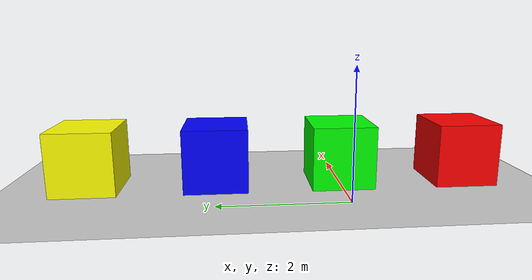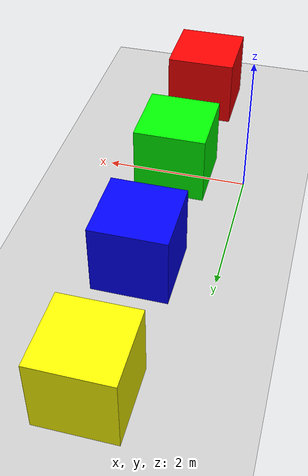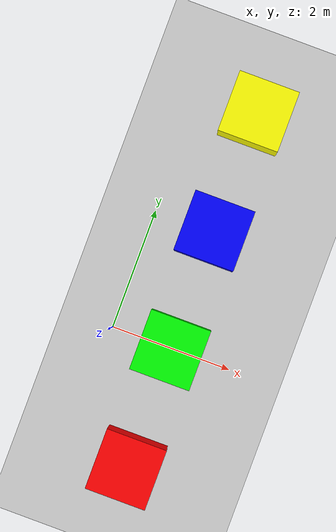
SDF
<sdf version="1.6">
 <world name="actors">
  <plugin filename="gz-sim-physics-system" name="gz::sim::systems::Physics"/>
  <plugin filename="gz-sim-user-commands-system" name="gz::sim::systems::UserCommands"/>
  <plugin filename="gz-sim-scene-broadcaster-system" name="gz::sim::systems::SceneBroadcaster"/>
  <light type="directional" name="sun">
   <pose>0 0 10 0 0 0</pose>
   <diffuse>0.8 0.8 0.8 1</diffuse>
   <specular>0.2 0.2 0.2 1</specular>
   <attenuation>
    <range>1000</range>
    <constant>0.9</constant>
    <linear>0.01</linear>
    <quadratic>0.001</quadratic>
   </attenuation>
   <direction>-0.5 0.1 -0.9</direction>
  </light>
  <model name="ground_plane">
   <static>true</static>
   <link name="link">
    <collision name="collision"><geometry><plane><normal>0.0 0.0 1</normal></plane></geometry></collision>
    <visual name="visual">
     <geometry><plane><normal>0.0 0.0 1</normal><size>100 100</size></plane></geometry>
     <material>
      <ambient>0.8 0.8 0.8 1</ambient>
      <diffuse>0.8 0.8 0.8 1</diffuse>
      <specular>0.8 0.8 0.8 1</specular>
     </material>
    </visual>
   </link>
  </model>
  <model name="red_box">
   <pose>1 -2 0.5 0 0 0</pose>
   <link name="box_link">
    <inertial>
     <inertia><ixx>1</ixx><ixy>0</ixy><ixz>0</ixz><iyy>1</iyy><iyz>0</iyz><izz>1</izz></inertia>
     <mass>1.0</mass>
    </inertial>
    <collision name="box_collision"><geometry><box><size>1 1 1</size></box></geometry></collision>
    <visual name="box_visual">
     <geometry><box><size>1 1 1</size></box></geometry>
     <material><ambient>1 0 0 1</ambient><diffuse>1 0 0 1</diffuse><specular>1 0 0 1</specular></material>
    </visual>
   </link>
  </model>
  <model name="green_box">
   <pose>1 0 0.5 0 0 0</pose>
   <link name="box_link">
    <inertial>
     <inertia><ixx>1</ixx><ixy>0</ixy><ixz>0</ixz><iyy>1</iyy><iyz>0</iyz><izz>1</izz></inertia>
     <mass>1.0</mass>
    </inertial>
    <collision name="box_collision"><geometry><box><size>1 1 1</size></box></geometry></collision>
    <visual name="box_visual">
     <geometry><box><size>1 1 1</size></box></geometry>
     <material><ambient>0 1 0 1</ambient><diffuse>0 1 0 1</diffuse><specular>0 1 0 1</specular></material>
    </visual>
   </link>
  </model>
  <model name="blue_box">
   <pose>1 2 0.5 0 0 0</pose>
   <link name="box_link">
    <inertial>
     <inertia><ixx>1</ixx><ixy>0</ixy><ixz>0</ixz><iyy>1</iyy><iyz>0</iyz><izz>1</izz></inertia>
     <mass>1.0</mass>
    </inertial>
    <collision name="box_collision"><geometry><box><size>1 1 1</size></box></geometry></collision>
    <visual name="box_visual">
     <geometry><box><size>1 1 1</size></box></geometry>
     <material><ambient>0 0 1 1</ambient><diffuse>0 0 1 1</diffuse><specular>0 0 1 1</specular></material>
    </visual>
   </link>
  </model>
  <model name="yellow_box">
   <pose>1 4 0.5 0 0 0</pose>
   <link name="box_link">
    <inertial>
     <inertia><ixx>1</ixx><ixy>0</ixy><ixz>0</ixz><iyy>1</iyy><iyz>0</iyz><izz>1</izz></inertia>
     <mass>1.0</mass>
    </inertial>
    <collision name="box_collision"><geometry><box><size>1 1 1</size></box></geometry></collision>
    <visual name="box_visual">
     <geometry><box><size>1 1 1</size></box></geometry>
     <material><ambient>1 1 0 1</ambient><diffuse>1 1 0 1</diffuse><specular>1 1 0 1</specular></material>
    </visual>
   </link>
  </model>
 </world>
</sdf>
